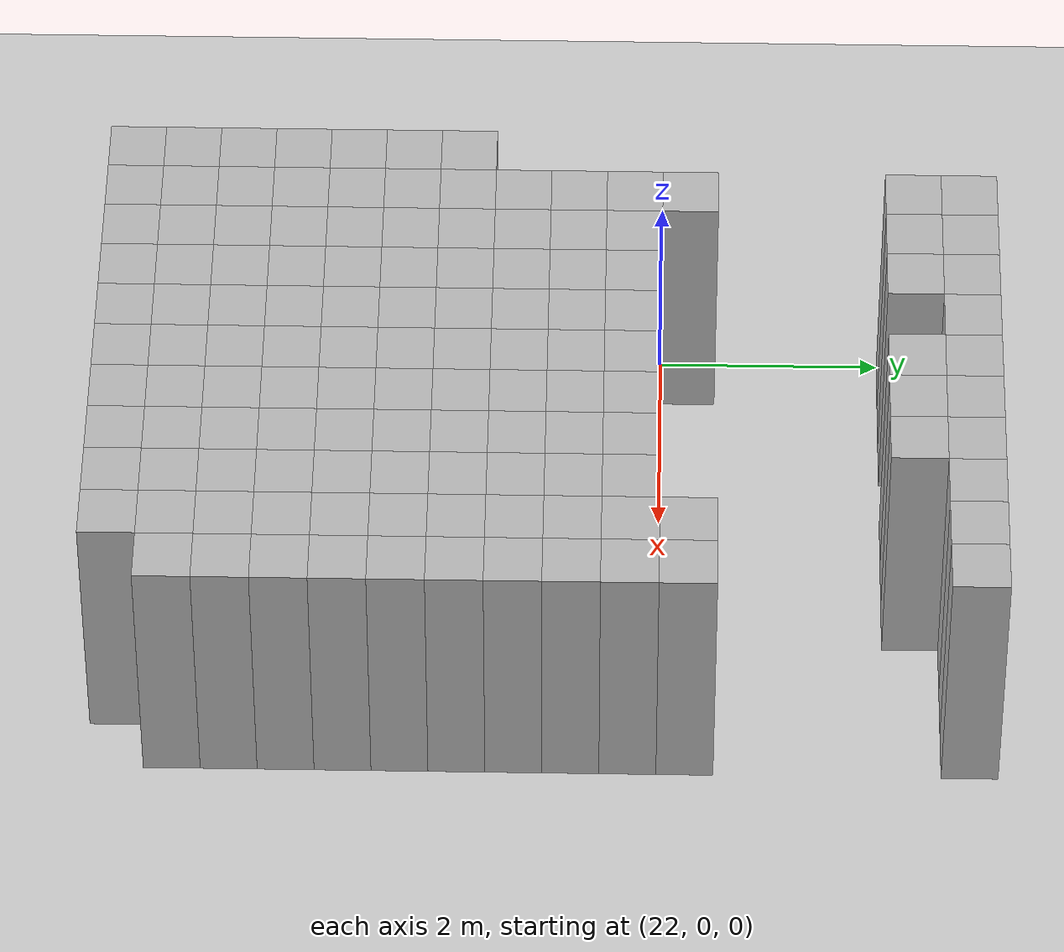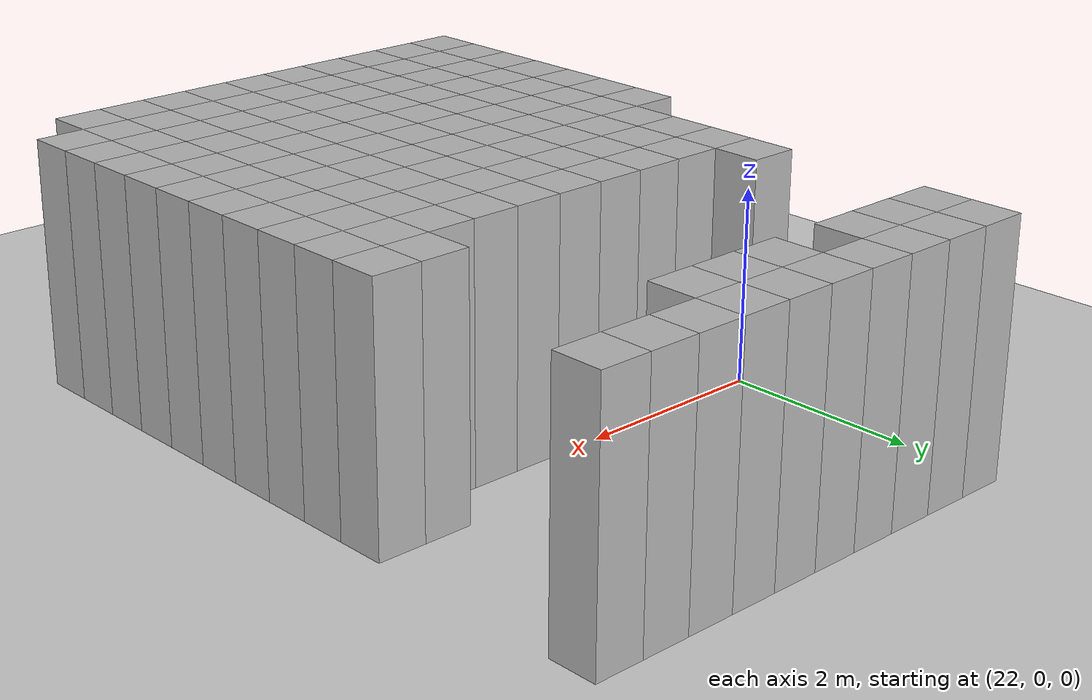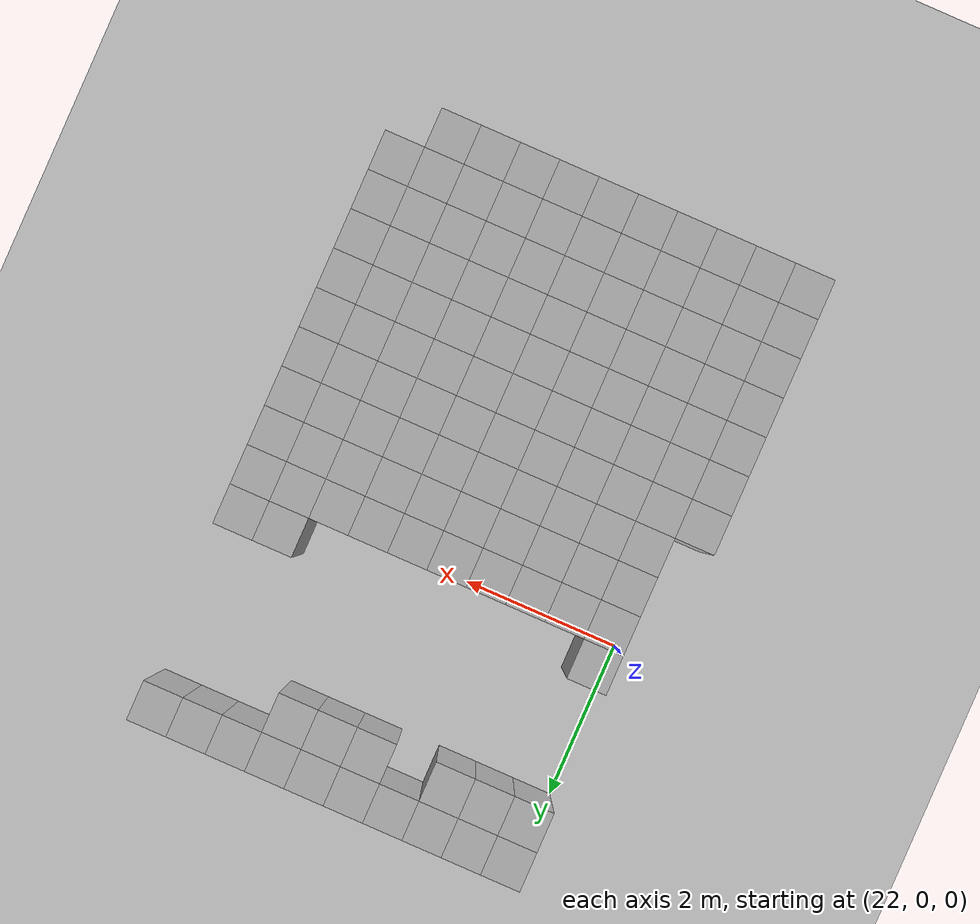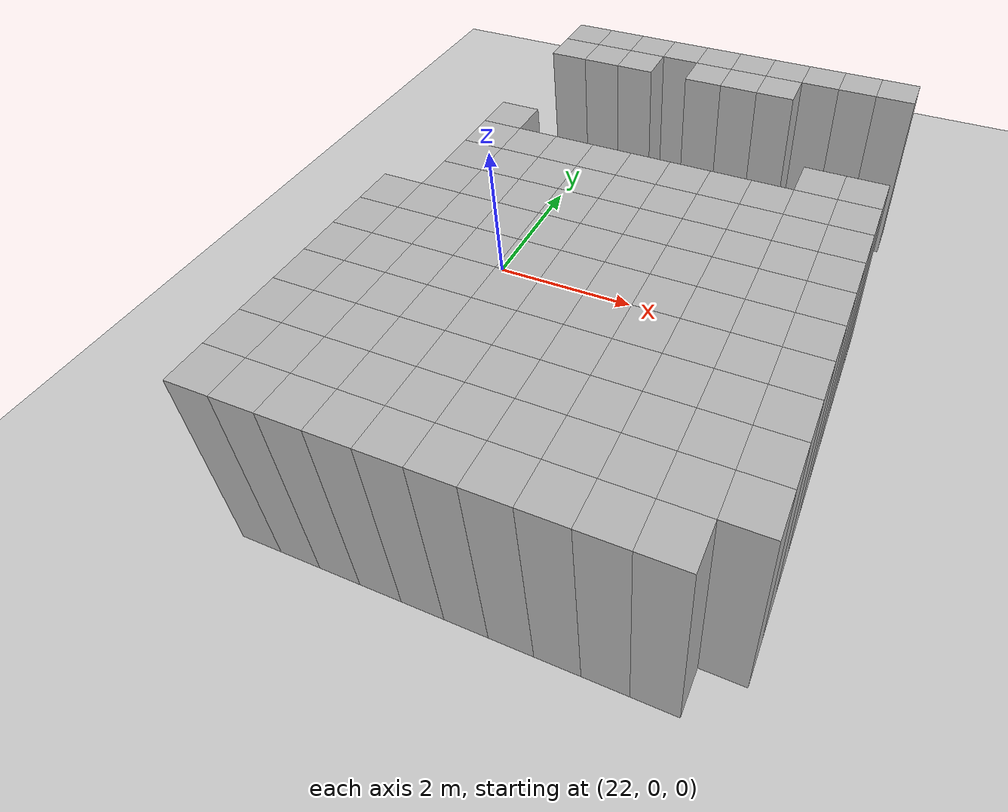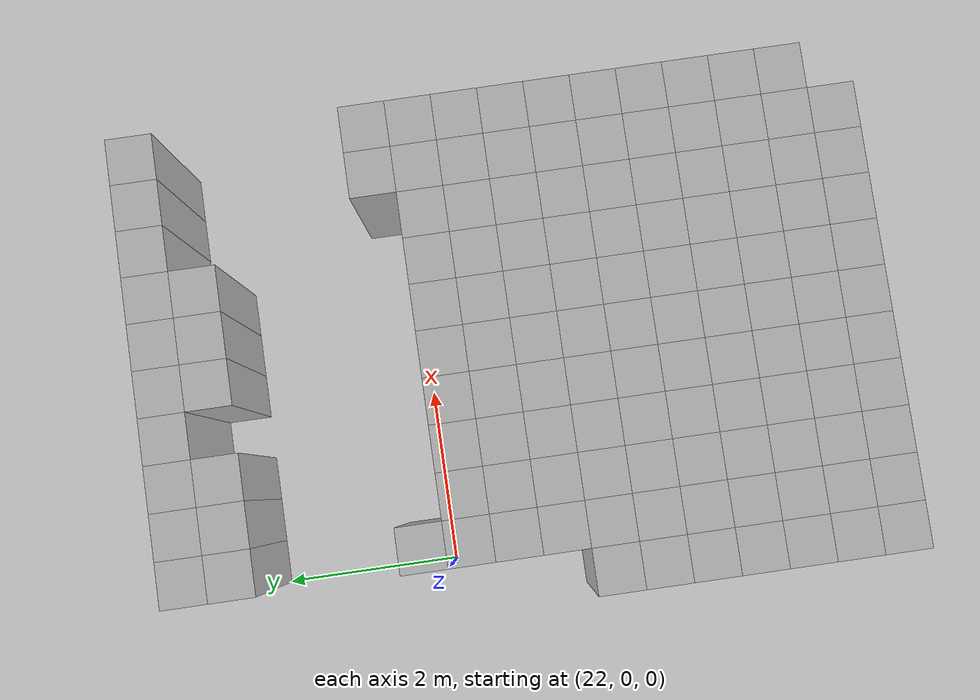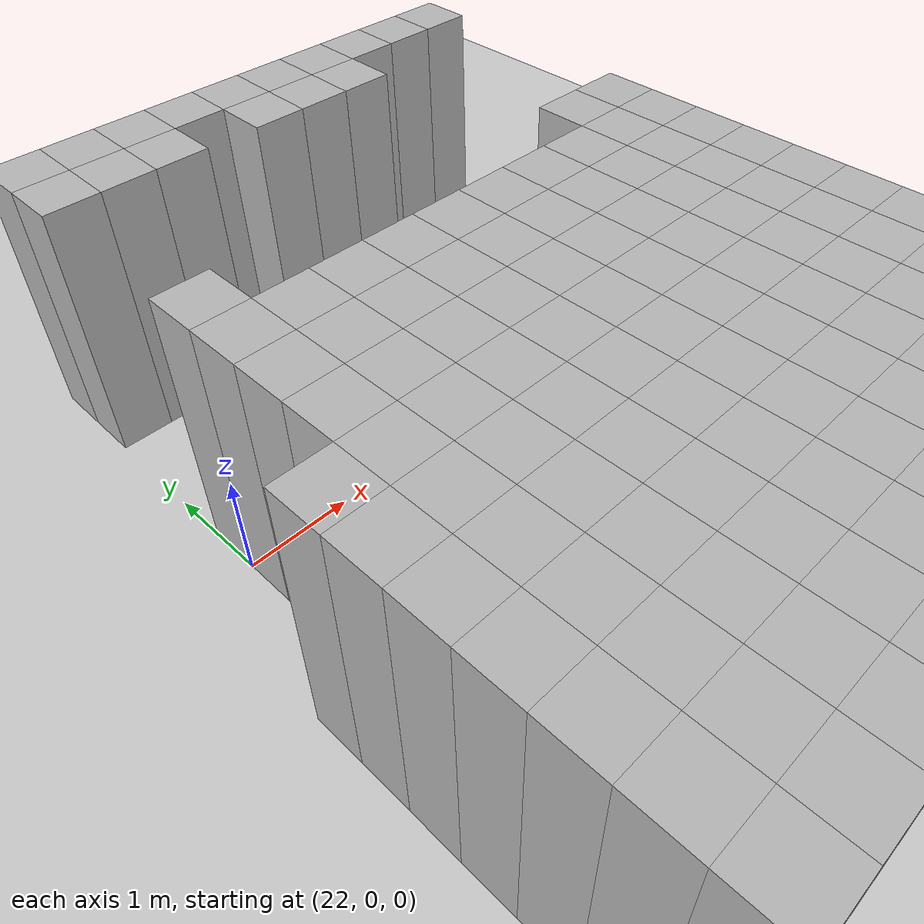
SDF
<sdf version="1.6">
 <world name="map_world">
  <include><uri>model://ground_plane</uri></include>
  <include><uri>model://sun</uri></include>
  <model name="wall_54">
   <static>true</static>
   <pose>22.250 2.750 1.250 0 0 0</pose>
   <link name="link">
    <collision name="collision"><geometry><box><size>0.500 0.500 2.500</size></box></geometry></collision>
    <visual name="visual"><geometry><box><size>0.500 0.500 2.500</size></box></geometry></visual>
   </link>
  </model>
  <model name="wall_55">
   <static>true</static>
   <pose>22.750 2.750 1.250 0 0 0</pose>
   <link name="link">
    <collision name="collision"><geometry><box><size>0.500 0.500 2.500</size></box></geometry></collision>
    <visual name="visual"><geometry><box><size>0.500 0.500 2.500</size></box></geometry></visual>
   </link>
  </model>
  <model name="wall_56">
   <static>true</static>
   <pose>23.250 2.750 1.250 0 0 0</pose>
   <link name="link">
    <collision name="collision"><geometry><box><size>0.500 0.500 2.500</size></box></geometry></collision>
    <visual name="visual"><geometry><box><size>0.500 0.500 2.500</size></box></geometry></visual>
   </link>
  </model>
  <model name="wall_57">
   <static>true</static>
   <pose>23.750 2.750 1.250 0 0 0</pose>
   <link name="link">
    <collision name="collision"><geometry><box><size>0.500 0.500 2.500</size></box></geometry></collision>
    <visual name="visual"><geometry><box><size>0.500 0.500 2.500</size></box></geometry></visual>
   </link>
  </model>
  <model name="wall_58">
   <static>true</static>
   <pose>24.250 2.750 1.250 0 0 0</pose>
   <link name="link">
    <collision name="collision"><geometry><box><size>0.500 0.500 2.500</size></box></geometry></collision>
    <visual name="visual"><geometry><box><size>0.500 0.500 2.500</size></box></geometry></visual>
   </link>
  </model>
  <model name="wall_59">
   <static>true</static>
   <pose>24.750 2.750 1.250 0 0 0</pose>
   <link name="link">
    <collision name="collision"><geometry><box><size>0.500 0.500 2.500</size></box></geometry></collision>
    <visual name="visual"><geometry><box><size>0.500 0.500 2.500</size></box></geometry></visual>
   </link>
  </model>
  <model name="wall_60">
   <static>true</static>
   <pose>25.250 2.750 1.250 0 0 0</pose>
   <link name="link">
    <collision name="collision"><geometry><box><size>0.500 0.500 2.500</size></box></geometry></collision>
    <visual name="visual"><geometry><box><size>0.500 0.500 2.500</size></box></geometry></visual>
   </link>
  </model>
  <model name="wall_61">
   <static>true</static>
   <pose>25.750 2.750 1.250 0 0 0</pose>
   <link name="link">
    <collision name="collision"><geometry><box><size>0.500 0.500 2.500</size></box></geometry></collision>
    <visual name="visual"><geometry><box><size>0.500 0.500 2.500</size></box></geometry></visual>
   </link>
  </model>
  <model name="wall_62">
   <static>true</static>
   <pose>26.250 2.750 1.250 0 0 0</pose>
   <link name="link">
    <collision name="collision"><geometry><box><size>0.500 0.500 2.500</size></box></geometry></collision>
    <visual name="visual"><geometry><box><size>0.500 0.500 2.500</size></box></geometry></visual>
   </link>
  </model>
  <model name="wall_63">
   <static>true</static>
   <pose>26.750 2.750 1.250 0 0 0</pose>
   <link name="link">
    <collision name="collision"><geometry><box><size>0.500 0.500 2.500</size></box></geometry></collision>
    <visual name="visual"><geometry><box><size>0.500 0.500 2.500</size></box></geometry></visual>
   </link>
  </model>
  <model name="wall_109">
   <static>true</static>
   <pose>22.250 2.250 1.250 0 0 0</pose>
   <link name="link">
    <collision name="collision"><geometry><box><size>0.500 0.500 2.500</size></box></geometry></collision>
    <visual name="visual"><geometry><box><size>0.500 0.500 2.500</size></box></geometry></visual>
   </link>
  </model>
  <model name="wall_110">
   <static>true</static>
   <pose>22.750 2.250 1.250 0 0 0</pose>
   <link name="link">
    <collision name="collision"><geometry><box><size>0.500 0.500 2.500</size></box></geometry></collision>
    <visual name="visual"><geometry><box><size>0.500 0.500 2.500</size></box></geometry></visual>
   </link>
  </model>
  <model name="wall_111">
   <static>true</static>
   <pose>23.250 2.250 1.250 0 0 0</pose>
   <link name="link">
    <collision name="collision"><geometry><box><size>0.500 0.500 2.500</size></box></geometry></collision>
    <visual name="visual"><geometry><box><size>0.500 0.500 2.500</size></box></geometry></visual>
   </link>
  </model>
  <model name="wall_112">
   <static>true</static>
   <pose>24.250 2.250 1.250 0 0 0</pose>
   <link name="link">
    <collision name="collision"><geometry><box><size>0.500 0.500 2.500</size></box></geometry></collision>
    <visual name="visual"><geometry><box><size>0.500 0.500 2.500</size></box></geometry></visual>
   </link>
  </model>
  <model name="wall_113">
   <static>true</static>
   <pose>24.750 2.250 1.250 0 0 0</pose>
   <link name="link">
    <collision name="collision"><geometry><box><size>0.500 0.500 2.500</size></box></geometry></collision>
    <visual name="visual"><geometry><box><size>0.500 0.500 2.500</size></box></geometry></visual>
   </link>
  </model>
  <model name="wall_114">
   <static>true</static>
   <pose>25.250 2.250 1.250 0 0 0</pose>
   <link name="link">
    <collision name="collision"><geometry><box><size>0.500 0.500 2.500</size></box></geometry></collision>
    <visual name="visual"><geometry><box><size>0.500 0.500 2.500</size></box></geometry></visual>
   </link>
  </model>
  <model name="wall_139">
   <static>true</static>
   <pose>22.250 0.250 1.250 0 0 0</pose>
   <link name="link">
    <collision name="collision"><geometry><box><size>0.500 0.500 2.500</size></box></geometry></collision>
    <visual name="visual"><geometry><box><size>0.500 0.500 2.500</size></box></geometry></visual>
   </link>
  </model>
  <model name="wall_140">
   <static>true</static>
   <pose>26.250 0.250 1.250 0 0 0</pose>
   <link name="link">
    <collision name="collision"><geometry><box><size>0.500 0.500 2.500</size></box></geometry></collision>
    <visual name="visual"><geometry><box><size>0.500 0.500 2.500</size></box></geometry></visual>
   </link>
  </model>
  <model name="wall_141">
   <static>true</static>
   <pose>26.750 0.250 1.250 0 0 0</pose>
   <link name="link">
    <collision name="collision"><geometry><box><size>0.500 0.500 2.500</size></box></geometry></collision>
    <visual name="visual"><geometry><box><size>0.500 0.500 2.500</size></box></geometry></visual>
   </link>
  </model>
  <model name="wall_184">
   <static>true</static>
   <pose>22.250 -0.250 1.250 0 0 0</pose>
   <link name="link">
    <collision name="collision"><geometry><box><size>0.500 0.500 2.500</size></box></geometry></collision>
    <visual name="visual"><geometry><box><size>0.500 0.500 2.500</size></box></geometry></visual>
   </link>
  </model>
  <model name="wall_185">
   <static>true</static>
   <pose>22.750 -0.250 1.250 0 0 0</pose>
   <link name="link">
    <collision name="collision"><geometry><box><size>0.500 0.500 2.500</size></box></geometry></collision>
    <visual name="visual"><geometry><box><size>0.500 0.500 2.500</size></box></geometry></visual>
   </link>
  </model>
  <model name="wall_186">
   <static>true</static>
   <pose>23.250 -0.250 1.250 0 0 0</pose>
   <link name="link">
    <collision name="collision"><geometry><box><size>0.500 0.500 2.500</size></box></geometry></collision>
    <visual name="visual"><geometry><box><size>0.500 0.500 2.500</size></box></geometry></visual>
   </link>
  </model>
  <model name="wall_187">
   <static>true</static>
   <pose>23.750 -0.250 1.250 0 0 0</pose>
   <link name="link">
    <collision name="collision"><geometry><box><size>0.500 0.500 2.500</size></box></geometry></collision>
    <visual name="visual"><geometry><box><size>0.500 0.500 2.500</size></box></geometry></visual>
   </link>
  </model>
  <model name="wall_188">
   <static>true</static>
   <pose>24.250 -0.250 1.250 0 0 0</pose>
   <link name="link">
    <collision name="collision"><geometry><box><size>0.500 0.500 2.500</size></box></geometry></collision>
    <visual name="visual"><geometry><box><size>0.500 0.500 2.500</size></box></geometry></visual>
   </link>
  </model>
  <model name="wall_189">
   <static>true</static>
   <pose>24.750 -0.250 1.250 0 0 0</pose>
   <link name="link">
    <collision name="collision"><geometry><box><size>0.500 0.500 2.500</size></box></geometry></collision>
    <visual name="visual"><geometry><box><size>0.500 0.500 2.500</size></box></geometry></visual>
   </link>
  </model>
  <model name="wall_190">
   <static>true</static>
   <pose>25.250 -0.250 1.250 0 0 0</pose>
   <link name="link">
    <collision name="collision"><geometry><box><size>0.500 0.500 2.500</size></box></geometry></collision>
    <visual name="visual"><geometry><box><size>0.500 0.500 2.500</size></box></geometry></visual>
   </link>
  </model>
  <model name="wall_191">
   <static>true</static>
   <pose>25.750 -0.250 1.250 0 0 0</pose>
   <link name="link">
    <collision name="collision"><geometry><box><size>0.500 0.500 2.500</size></box></geometry></collision>
    <visual name="visual"><geometry><box><size>0.500 0.500 2.500</size></box></geometry></visual>
   </link>
  </model>
  <model name="wall_192">
   <static>true</static>
   <pose>26.250 -0.250 1.250 0 0 0</pose>
   <link name="link">
    <collision name="collision"><geometry><box><size>0.500 0.500 2.500</size></box></geometry></collision>
    <visual name="visual"><geometry><box><size>0.500 0.500 2.500</size></box></geometry></visual>
   </link>
  </model>
  <model name="wall_193">
   <static>true</static>
   <pose>26.750 -0.250 1.250 0 0 0</pose>
   <link name="link">
    <collision name="collision"><geometry><box><size>0.500 0.500 2.500</size></box></geometry></collision>
    <visual name="visual"><geometry><box><size>0.500 0.500 2.500</size></box></geometry></visual>
   </link>
  </model>
  <model name="wall_256">
   <static>true</static>
   <pose>22.250 -0.750 1.250 0 0 0</pose>
   <link name="link">
    <collision name="collision"><geometry><box><size>0.500 0.500 2.500</size></box></geometry></collision>
    <visual name="visual"><geometry><box><size>0.500 0.500 2.500</size></box></geometry></visual>
   </link>
  </model>
  <model name="wall_257">
   <static>true</static>
   <pose>22.750 -0.750 1.250 0 0 0</pose>
   <link name="link">
    <collision name="collision"><geometry><box><size>0.500 0.500 2.500</size></box></geometry></collision>
    <visual name="visual"><geometry><box><size>0.500 0.500 2.500</size></box></geometry></visual>
   </link>
  </model>
  <model name="wall_258">
   <static>true</static>
   <pose>23.250 -0.750 1.250 0 0 0</pose>
   <link name="link">
    <collision name="collision"><geometry><box><size>0.500 0.500 2.500</size></box></geometry></collision>
    <visual name="visual"><geometry><box><size>0.500 0.500 2.500</size></box></geometry></visual>
   </link>
  </model>
  <model name="wall_259">
   <static>true</static>
   <pose>23.750 -0.750 1.250 0 0 0</pose>
   <link name="link">
    <collision name="collision"><geometry><box><size>0.500 0.500 2.500</size></box></geometry></collision>
    <visual name="visual"><geometry><box><size>0.500 0.500 2.500</size></box></geometry></visual>
   </link>
  </model>
  <model name="wall_260">
   <static>true</static>
   <pose>24.250 -0.750 1.250 0 0 0</pose>
   <link name="link">
    <collision name="collision"><geometry><box><size>0.500 0.500 2.500</size></box></geometry></collision>
    <visual name="visual"><geometry><box><size>0.500 0.500 2.500</size></box></geometry></visual>
   </link>
  </model>
  <model name="wall_261">
   <static>true</static>
   <pose>24.750 -0.750 1.250 0 0 0</pose>
   <link name="link">
    <collision name="collision"><geometry><box><size>0.500 0.500 2.500</size></box></geometry></collision>
    <visual name="visual"><geometry><box><size>0.500 0.500 2.500</size></box></geometry></visual>
   </link>
  </model>
  <model name="wall_262">
   <static>true</static>
   <pose>25.250 -0.750 1.250 0 0 0</pose>
   <link name="link">
    <collision name="collision"><geometry><box><size>0.500 0.500 2.500</size></box></geometry></collision>
    <visual name="visual"><geometry><box><size>0.500 0.500 2.500</size></box></geometry></visual>
   </link>
  </model>
  <model name="wall_263">
   <static>true</static>
   <pose>25.750 -0.750 1.250 0 0 0</pose>
   <link name="link">
    <collision name="collision"><geometry><box><size>0.500 0.500 2.500</size></box></geometry></collision>
    <visual name="visual"><geometry><box><size>0.500 0.500 2.500</size></box></geometry></visual>
   </link>
  </model>
  <model name="wall_264">
   <static>true</static>
   <pose>26.250 -0.750 1.250 0 0 0</pose>
   <link name="link">
    <collision name="collision"><geometry><box><size>0.500 0.500 2.500</size></box></geometry></collision>
    <visual name="visual"><geometry><box><size>0.500 0.500 2.500</size></box></geometry></visual>
   </link>
  </model>
  <model name="wall_265">
   <static>true</static>
   <pose>26.750 -0.750 1.250 0 0 0</pose>
   <link name="link">
    <collision name="collision"><geometry><box><size>0.500 0.500 2.500</size></box></geometry></collision>
    <visual name="visual"><geometry><box><size>0.500 0.500 2.500</size></box></geometry></visual>
   </link>
  </model>
  <model name="wall_328">
   <static>true</static>
   <pose>22.250 -1.250 1.250 0 0 0</pose>
   <link name="link">
    <collision name="collision"><geometry><box><size>0.500 0.500 2.500</size></box></geometry></collision>
    <visual name="visual"><geometry><box><size>0.500 0.500 2.500</size></box></geometry></visual>
   </link>
  </model>
  <model name="wall_329">
   <static>true</static>
   <pose>22.750 -1.250 1.250 0 0 0</pose>
   <link name="link">
    <collision name="collision"><geometry><box><size>0.500 0.500 2.500</size></box></geometry></collision>
    <visual name="visual"><geometry><box><size>0.500 0.500 2.500</size></box></geometry></visual>
   </link>
  </model>
  <model name="wall_330">
   <static>true</static>
   <pose>23.250 -1.250 1.250 0 0 0</pose>
   <link name="link">
    <collision name="collision"><geometry><box><size>0.500 0.500 2.500</size></box></geometry></collision>
    <visual name="visual"><geometry><box><size>0.500 0.500 2.500</size></box></geometry></visual>
   </link>
  </model>
  <model name="wall_331">
   <static>true</static>
   <pose>23.750 -1.250 1.250 0 0 0</pose>
   <link name="link">
    <collision name="collision"><geometry><box><size>0.500 0.500 2.500</size></box></geometry></collision>
    <visual name="visual"><geometry><box><size>0.500 0.500 2.500</size></box></geometry></visual>
   </link>
  </model>
  <model name="wall_332">
   <static>true</static>
   <pose>24.250 -1.250 1.250 0 0 0</pose>
   <link name="link">
    <collision name="collision"><geometry><box><size>0.500 0.500 2.500</size></box></geometry></collision>
    <visual name="visual"><geometry><box><size>0.500 0.500 2.500</size></box></geometry></visual>
   </link>
  </model>
  <model name="wall_333">
   <static>true</static>
   <pose>24.750 -1.250 1.250 0 0 0</pose>
   <link name="link">
    <collision name="collision"><geometry><box><size>0.500 0.500 2.500</size></box></geometry></collision>
    <visual name="visual"><geometry><box><size>0.500 0.500 2.500</size></box></geometry></visual>
   </link>
  </model>
  <model name="wall_334">
   <static>true</static>
   <pose>25.250 -1.250 1.250 0 0 0</pose>
   <link name="link">
    <collision name="collision"><geometry><box><size>0.500 0.500 2.500</size></box></geometry></collision>
    <visual name="visual"><geometry><box><size>0.500 0.500 2.500</size></box></geometry></visual>
   </link>
  </model>
  <model name="wall_335">
   <static>true</static>
   <pose>25.750 -1.250 1.250 0 0 0</pose>
   <link name="link">
    <collision name="collision"><geometry><box><size>0.500 0.500 2.500</size></box></geometry></collision>
    <visual name="visual"><geometry><box><size>0.500 0.500 2.500</size></box></geometry></visual>
   </link>
  </model>
  <model name="wall_336">
   <static>true</static>
   <pose>26.250 -1.250 1.250 0 0 0</pose>
   <link name="link">
    <collision name="collision"><geometry><box><size>0.500 0.500 2.500</size></box></geometry></collision>
    <visual name="visual"><geometry><box><size>0.500 0.500 2.500</size></box></geometry></visual>
   </link>
  </model>
  <model name="wall_337">
   <static>true</static>
   <pose>26.750 -1.250 1.250 0 0 0</pose>
   <link name="link">
    <collision name="collision"><geometry><box><size>0.500 0.500 2.500</size></box></geometry></collision>
    <visual name="visual"><geometry><box><size>0.500 0.500 2.500</size></box></geometry></visual>
   </link>
  </model>
  <model name="wall_399">
   <static>true</static>
   <pose>21.750 -1.750 1.250 0 0 0</pose>
   <link name="link">
    <collision name="collision"><geometry><box><size>0.500 0.500 2.500</size></box></geometry></collision>
    <visual name="visual"><geometry><box><size>0.500 0.500 2.500</size></box></geometry></visual>
   </link>
  </model>
  <model name="wall_400">
   <static>true</static>
   <pose>22.250 -1.750 1.250 0 0 0</pose>
   <link name="link">
    <collision name="collision"><geometry><box><size>0.500 0.500 2.500</size></box></geometry></collision>
    <visual name="visual"><geometry><box><size>0.500 0.500 2.500</size></box></geometry></visual>
   </link>
  </model>
  <model name="wall_401">
   <static>true</static>
   <pose>22.750 -1.750 1.250 0 0 0</pose>
   <link name="link">
    <collision name="collision"><geometry><box><size>0.500 0.500 2.500</size></box></geometry></collision>
    <visual name="visual"><geometry><box><size>0.500 0.500 2.500</size></box></geometry></visual>
   </link>
  </model>
  <model name="wall_402">
   <static>true</static>
   <pose>23.250 -1.750 1.250 0 0 0</pose>
   <link name="link">
    <collision name="collision"><geometry><box><size>0.500 0.500 2.500</size></box></geometry></collision>
    <visual name="visual"><geometry><box><size>0.500 0.500 2.500</size></box></geometry></visual>
   </link>
  </model>
  <model name="wall_403">
   <static>true</static>
   <pose>23.750 -1.750 1.250 0 0 0</pose>
   <link name="link">
    <collision name="collision"><geometry><box><size>0.500 0.500 2.500</size></box></geometry></collision>
    <visual name="visual"><geometry><box><size>0.500 0.500 2.500</size></box></geometry></visual>
   </link>
  </model>
  <model name="wall_404">
   <static>true</static>
   <pose>24.250 -1.750 1.250 0 0 0</pose>
   <link name="link">
    <collision name="collision"><geometry><box><size>0.500 0.500 2.500</size></box></geometry></collision>
    <visual name="visual"><geometry><box><size>0.500 0.500 2.500</size></box></geometry></visual>
   </link>
  </model>
  <model name="wall_405">
   <static>true</static>
   <pose>24.750 -1.750 1.250 0 0 0</pose>
   <link name="link">
    <collision name="collision"><geometry><box><size>0.500 0.500 2.500</size></box></geometry></collision>
    <visual name="visual"><geometry><box><size>0.500 0.500 2.500</size></box></geometry></visual>
   </link>
  </model>
  <model name="wall_406">
   <static>true</static>
   <pose>25.250 -1.750 1.250 0 0 0</pose>
   <link name="link">
    <collision name="collision"><geometry><box><size>0.500 0.500 2.500</size></box></geometry></collision>
    <visual name="visual"><geometry><box><size>0.500 0.500 2.500</size></box></geometry></visual>
   </link>
  </model>
  <model name="wall_407">
   <static>true</static>
   <pose>25.750 -1.750 1.250 0 0 0</pose>
   <link name="link">
    <collision name="collision"><geometry><box><size>0.500 0.500 2.500</size></box></geometry></collision>
    <visual name="visual"><geometry><box><size>0.500 0.500 2.500</size></box></geometry></visual>
   </link>
  </model>
  <model name="wall_408">
   <static>true</static>
   <pose>26.250 -1.750 1.250 0 0 0</pose>
   <link name="link">
    <collision name="collision"><geometry><box><size>0.500 0.500 2.500</size></box></geometry></collision>
    <visual name="visual"><geometry><box><size>0.500 0.500 2.500</size></box></geometry></visual>
   </link>
  </model>
  <model name="wall_409">
   <static>true</static>
   <pose>26.750 -1.750 1.250 0 0 0</pose>
   <link name="link">
    <collision name="collision"><geometry><box><size>0.500 0.500 2.500</size></box></geometry></collision>
    <visual name="visual"><geometry><box><size>0.500 0.500 2.500</size></box></geometry></visual>
   </link>
  </model>
  <model name="wall_471">
   <static>true</static>
   <pose>21.750 -2.250 1.250 0 0 0</pose>
   <link name="link">
    <collision name="collision"><geometry><box><size>0.500 0.500 2.500</size></box></geometry></collision>
    <visual name="visual"><geometry><box><size>0.500 0.500 2.500</size></box></geometry></visual>
   </link>
  </model>
  <model name="wall_472">
   <static>true</static>
   <pose>22.250 -2.250 1.250 0 0 0</pose>
   <link name="link">
    <collision name="collision"><geometry><box><size>0.500 0.500 2.500</size></box></geometry></collision>
    <visual name="visual"><geometry><box><size>0.500 0.500 2.500</size></box></geometry></visual>
   </link>
  </model>
  <model name="wall_473">
   <static>true</static>
   <pose>22.750 -2.250 1.250 0 0 0</pose>
   <link name="link">
    <collision name="collision"><geometry><box><size>0.500 0.500 2.500</size></box></geometry></collision>
    <visual name="visual"><geometry><box><size>0.500 0.500 2.500</size></box></geometry></visual>
   </link>
  </model>
  <model name="wall_474">
   <static>true</static>
   <pose>23.250 -2.250 1.250 0 0 0</pose>
   <link name="link">
    <collision name="collision"><geometry><box><size>0.500 0.500 2.500</size></box></geometry></collision>
    <visual name="visual"><geometry><box><size>0.500 0.500 2.500</size></box></geometry></visual>
   </link>
  </model>
  <model name="wall_475">
   <static>true</static>
   <pose>23.750 -2.250 1.250 0 0 0</pose>
   <link name="link">
    <collision name="collision"><geometry><box><size>0.500 0.500 2.500</size></box></geometry></collision>
    <visual name="visual"><geometry><box><size>0.500 0.500 2.500</size></box></geometry></visual>
   </link>
  </model>
  <model name="wall_476">
   <static>true</static>
   <pose>24.250 -2.250 1.250 0 0 0</pose>
   <link name="link">
    <collision name="collision"><geometry><box><size>0.500 0.500 2.500</size></box></geometry></collision>
    <visual name="visual"><geometry><box><size>0.500 0.500 2.500</size></box></geometry></visual>
   </link>
  </model>
  <model name="wall_477">
   <static>true</static>
   <pose>24.750 -2.250 1.250 0 0 0</pose>
   <link name="link">
    <collision name="collision"><geometry><box><size>0.500 0.500 2.500</size></box></geometry></collision>
    <visual name="visual"><geometry><box><size>0.500 0.500 2.500</size></box></geometry></visual>
   </link>
  </model>
  <model name="wall_478">
   <static>true</static>
   <pose>25.250 -2.250 1.250 0 0 0</pose>
   <link name="link">
    <collision name="collision"><geometry><box><size>0.500 0.500 2.500</size></box></geometry></collision>
    <visual name="visual"><geometry><box><size>0.500 0.500 2.500</size></box></geometry></visual>
   </link>
  </model>
  <model name="wall_479">
   <static>true</static>
   <pose>25.750 -2.250 1.250 0 0 0</pose>
   <link name="link">
    <collision name="collision"><geometry><box><size>0.500 0.500 2.500</size></box></geometry></collision>
    <visual name="visual"><geometry><box><size>0.500 0.500 2.500</size></box></geometry></visual>
   </link>
  </model>
  <model name="wall_480">
   <static>true</static>
   <pose>26.250 -2.250 1.250 0 0 0</pose>
   <link name="link">
    <collision name="collision"><geometry><box><size>0.500 0.500 2.500</size></box></geometry></collision>
    <visual name="visual"><geometry><box><size>0.500 0.500 2.500</size></box></geometry></visual>
   </link>
  </model>
  <model name="wall_481">
   <static>true</static>
   <pose>26.750 -2.250 1.250 0 0 0</pose>
   <link name="link">
    <collision name="collision"><geometry><box><size>0.500 0.500 2.500</size></box></geometry></collision>
    <visual name="visual"><geometry><box><size>0.500 0.500 2.500</size></box></geometry></visual>
   </link>
  </model>
  <model name="wall_543">
   <static>true</static>
   <pose>21.750 -2.750 1.250 0 0 0</pose>
   <link name="link">
    <collision name="collision"><geometry><box><size>0.500 0.500 2.500</size></box></geometry></collision>
    <visual name="visual"><geometry><box><size>0.500 0.500 2.500</size></box></geometry></visual>
   </link>
  </model>
  <model name="wall_544">
   <static>true</static>
   <pose>22.250 -2.750 1.250 0 0 0</pose>
   <link name="link">
    <collision name="collision"><geometry><box><size>0.500 0.500 2.500</size></box></geometry></collision>
    <visual name="visual"><geometry><box><size>0.500 0.500 2.500</size></box></geometry></visual>
   </link>
  </model>
  <model name="wall_545">
   <static>true</static>
   <pose>22.750 -2.750 1.250 0 0 0</pose>
   <link name="link">
    <collision name="collision"><geometry><box><size>0.500 0.500 2.500</size></box></geometry></collision>
    <visual name="visual"><geometry><box><size>0.500 0.500 2.500</size></box></geometry></visual>
   </link>
  </model>
  <model name="wall_546">
   <static>true</static>
   <pose>23.250 -2.750 1.250 0 0 0</pose>
   <link name="link">
    <collision name="collision"><geometry><box><size>0.500 0.500 2.500</size></box></geometry></collision>
    <visual name="visual"><geometry><box><size>0.500 0.500 2.500</size></box></geometry></visual>
   </link>
  </model>
  <model name="wall_547">
   <static>true</static>
   <pose>23.750 -2.750 1.250 0 0 0</pose>
   <link name="link">
    <collision name="collision"><geometry><box><size>0.500 0.500 2.500</size></box></geometry></collision>
    <visual name="visual"><geometry><box><size>0.500 0.500 2.500</size></box></geometry></visual>
   </link>
  </model>
  <model name="wall_548">
   <static>true</static>
   <pose>24.250 -2.750 1.250 0 0 0</pose>
   <link name="link">
    <collision name="collision"><geometry><box><size>0.500 0.500 2.500</size></box></geometry></collision>
    <visual name="visual"><geometry><box><size>0.500 0.500 2.500</size></box></geometry></visual>
   </link>
  </model>
  <model name="wall_549">
   <static>true</static>
   <pose>24.750 -2.750 1.250 0 0 0</pose>
   <link name="link">
    <collision name="collision"><geometry><box><size>0.500 0.500 2.500</size></box></geometry></collision>
    <visual name="visual"><geometry><box><size>0.500 0.500 2.500</size></box></geometry></visual>
   </link>
  </model>
  <model name="wall_550">
   <static>true</static>
   <pose>25.250 -2.750 1.250 0 0 0</pose>
   <link name="link">
    <collision name="collision"><geometry><box><size>0.500 0.500 2.500</size></box></geometry></collision>
    <visual name="visual"><geometry><box><size>0.500 0.500 2.500</size></box></geometry></visual>
   </link>
  </model>
  <model name="wall_551">
   <static>true</static>
   <pose>25.750 -2.750 1.250 0 0 0</pose>
   <link name="link">
    <collision name="collision"><geometry><box><size>0.500 0.500 2.500</size></box></geometry></collision>
    <visual name="visual"><geometry><box><size>0.500 0.500 2.500</size></box></geometry></visual>
   </link>
  </model>
  <model name="wall_552">
   <static>true</static>
   <pose>26.250 -2.750 1.250 0 0 0</pose>
   <link name="link">
    <collision name="collision"><geometry><box><size>0.500 0.500 2.500</size></box></geometry></collision>
    <visual name="visual"><geometry><box><size>0.500 0.500 2.500</size></box></geometry></visual>
   </link>
  </model>
  <model name="wall_553">
   <static>true</static>
   <pose>26.750 -2.750 1.250 0 0 0</pose>
   <link name="link">
    <collision name="collision"><geometry><box><size>0.500 0.500 2.500</size></box></geometry></collision>
    <visual name="visual"><geometry><box><size>0.500 0.500 2.500</size></box></geometry></visual>
   </link>
  </model>
  <model name="wall_615">
   <static>true</static>
   <pose>21.750 -3.250 1.250 0 0 0</pose>
   <link name="link">
    <collision name="collision"><geometry><box><size>0.500 0.500 2.500</size></box></geometry></collision>
    <visual name="visual"><geometry><box><size>0.500 0.500 2.500</size></box></geometry></visual>
   </link>
  </model>
  <model name="wall_616">
   <static>true</static>
   <pose>22.250 -3.250 1.250 0 0 0</pose>
   <link name="link">
    <collision name="collision"><geometry><box><size>0.500 0.500 2.500</size></box></geometry></collision>
    <visual name="visual"><geometry><box><size>0.500 0.500 2.500</size></box></geometry></visual>
   </link>
  </model>
  <model name="wall_617">
   <static>true</static>
   <pose>22.750 -3.250 1.250 0 0 0</pose>
   <link name="link">
    <collision name="collision"><geometry><box><size>0.500 0.500 2.500</size></box></geometry></collision>
    <visual name="visual"><geometry><box><size>0.500 0.500 2.500</size></box></geometry></visual>
   </link>
  </model>
  <model name="wall_618">
   <static>true</static>
   <pose>23.250 -3.250 1.250 0 0 0</pose>
   <link name="link">
    <collision name="collision"><geometry><box><size>0.500 0.500 2.500</size></box></geometry></collision>
    <visual name="visual"><geometry><box><size>0.500 0.500 2.500</size></box></geometry></visual>
   </link>
  </model>
  <model name="wall_619">
   <static>true</static>
   <pose>23.750 -3.250 1.250 0 0 0</pose>
   <link name="link">
    <collision name="collision"><geometry><box><size>0.500 0.500 2.500</size></box></geometry></collision>
    <visual name="visual"><geometry><box><size>0.500 0.500 2.500</size></box></geometry></visual>
   </link>
  </model>
  <model name="wall_620">
   <static>true</static>
   <pose>24.250 -3.250 1.250 0 0 0</pose>
   <link name="link">
    <collision name="collision"><geometry><box><size>0.500 0.500 2.500</size></box></geometry></collision>
    <visual name="visual"><geometry><box><size>0.500 0.500 2.500</size></box></geometry></visual>
   </link>
  </model>
  <model name="wall_621">
   <static>true</static>
   <pose>24.750 -3.250 1.250 0 0 0</pose>
   <link name="link">
    <collision name="collision"><geometry><box><size>0.500 0.500 2.500</size></box></geometry></collision>
    <visual name="visual"><geometry><box><size>0.500 0.500 2.500</size></box></geometry></visual>
   </link>
  </model>
  <model name="wall_622">
   <static>true</static>
   <pose>25.250 -3.250 1.250 0 0 0</pose>
   <link name="link">
    <collision name="collision"><geometry><box><size>0.500 0.500 2.500</size></box></geometry></collision>
    <visual name="visual"><geometry><box><size>0.500 0.500 2.500</size></box></geometry></visual>
   </link>
  </model>
  <model name="wall_623">
   <static>true</static>
   <pose>25.750 -3.250 1.250 0 0 0</pose>
   <link name="link">
    <collision name="collision"><geometry><box><size>0.500 0.500 2.500</size></box></geometry></collision>
    <visual name="visual"><geometry><box><size>0.500 0.500 2.500</size></box></geometry></visual>
   </link>
  </model>
  <model name="wall_624">
   <static>true</static>
   <pose>26.250 -3.250 1.250 0 0 0</pose>
   <link name="link">
    <collision name="collision"><geometry><box><size>0.500 0.500 2.500</size></box></geometry></collision>
    <visual name="visual"><geometry><box><size>0.500 0.500 2.500</size></box></geometry></visual>
   </link>
  </model>
  <model name="wall_625">
   <static>true</static>
   <pose>26.750 -3.250 1.250 0 0 0</pose>
   <link name="link">
    <collision name="collision"><geometry><box><size>0.500 0.500 2.500</size></box></geometry></collision>
    <visual name="visual"><geometry><box><size>0.500 0.500 2.500</size></box></geometry></visual>
   </link>
  </model>
  <model name="wall_687">
   <static>true</static>
   <pose>21.750 -3.750 1.250 0 0 0</pose>
   <link name="link">
    <collision name="collision"><geometry><box><size>0.500 0.500 2.500</size></box></geometry></collision>
    <visual name="visual"><geometry><box><size>0.500 0.500 2.500</size></box></geometry></visual>
   </link>
  </model>
  <model name="wall_688">
   <static>true</static>
   <pose>22.250 -3.750 1.250 0 0 0</pose>
   <link name="link">
    <collision name="collision"><geometry><box><size>0.500 0.500 2.500</size></box></geometry></collision>
    <visual name="visual"><geometry><box><size>0.500 0.500 2.500</size></box></geometry></visual>
   </link>
  </model>
  <model name="wall_689">
   <static>true</static>
   <pose>22.750 -3.750 1.250 0 0 0</pose>
   <link name="link">
    <collision name="collision"><geometry><box><size>0.500 0.500 2.500</size></box></geometry></collision>
    <visual name="visual"><geometry><box><size>0.500 0.500 2.500</size></box></geometry></visual>
   </link>
  </model>
  <model name="wall_690">
   <static>true</static>
   <pose>23.250 -3.750 1.250 0 0 0</pose>
   <link name="link">
    <collision name="collision"><geometry><box><size>0.500 0.500 2.500</size></box></geometry></collision>
    <visual name="visual"><geometry><box><size>0.500 0.500 2.500</size></box></geometry></visual>
   </link>
  </model>
  <model name="wall_691">
   <static>true</static>
   <pose>23.750 -3.750 1.250 0 0 0</pose>
   <link name="link">
    <collision name="collision"><geometry><box><size>0.500 0.500 2.500</size></box></geometry></collision>
    <visual name="visual"><geometry><box><size>0.500 0.500 2.500</size></box></geometry></visual>
   </link>
  </model>
  <model name="wall_692">
   <static>true</static>
   <pose>24.250 -3.750 1.250 0 0 0</pose>
   <link name="link">
    <collision name="collision"><geometry><box><size>0.500 0.500 2.500</size></box></geometry></collision>
    <visual name="visual"><geometry><box><size>0.500 0.500 2.500</size></box></geometry></visual>
   </link>
  </model>
  <model name="wall_693">
   <static>true</static>
   <pose>24.750 -3.750 1.250 0 0 0</pose>
   <link name="link">
    <collision name="collision"><geometry><box><size>0.500 0.500 2.500</size></box></geometry></collision>
    <visual name="visual"><geometry><box><size>0.500 0.500 2.500</size></box></geometry></visual>
   </link>
  </model>
  <model name="wall_694">
   <static>true</static>
   <pose>25.250 -3.750 1.250 0 0 0</pose>
   <link name="link">
    <collision name="collision"><geometry><box><size>0.500 0.500 2.500</size></box></geometry></collision>
    <visual name="visual"><geometry><box><size>0.500 0.500 2.500</size></box></geometry></visual>
   </link>
  </model>
  <model name="wall_695">
   <static>true</static>
   <pose>25.750 -3.750 1.250 0 0 0</pose>
   <link name="link">
    <collision name="collision"><geometry><box><size>0.500 0.500 2.500</size></box></geometry></collision>
    <visual name="visual"><geometry><box><size>0.500 0.500 2.500</size></box></geometry></visual>
   </link>
  </model>
  <model name="wall_696">
   <static>true</static>
   <pose>26.250 -3.750 1.250 0 0 0</pose>
   <link name="link">
    <collision name="collision"><geometry><box><size>0.500 0.500 2.500</size></box></geometry></collision>
    <visual name="visual"><geometry><box><size>0.500 0.500 2.500</size></box></geometry></visual>
   </link>
  </model>
  <model name="wall_697">
   <static>true</static>
   <pose>26.750 -3.750 1.250 0 0 0</pose>
   <link name="link">
    <collision name="collision"><geometry><box><size>0.500 0.500 2.500</size></box></geometry></collision>
    <visual name="visual"><geometry><box><size>0.500 0.500 2.500</size></box></geometry></visual>
   </link>
  </model>
  <model name="wall_759">
   <static>true</static>
   <pose>21.750 -4.250 1.250 0 0 0</pose>
   <link name="link">
    <collision name="collision"><geometry><box><size>0.500 0.500 2.500</size></box></geometry></collision>
    <visual name="visual"><geometry><box><size>0.500 0.500 2.500</size></box></geometry></visual>
   </link>
  </model>
  <model name="wall_760">
   <static>true</static>
   <pose>22.250 -4.250 1.250 0 0 0</pose>
   <link name="link">
    <collision name="collision"><geometry><box><size>0.500 0.500 2.500</size></box></geometry></collision>
    <visual name="visual"><geometry><box><size>0.500 0.500 2.500</size></box></geometry></visual>
   </link>
  </model>
  <model name="wall_761">
   <static>true</static>
   <pose>22.750 -4.250 1.250 0 0 0</pose>
   <link name="link">
    <collision name="collision"><geometry><box><size>0.500 0.500 2.500</size></box></geometry></collision>
    <visual name="visual"><geometry><box><size>0.500 0.500 2.500</size></box></geometry></visual>
   </link>
  </model>
  <model name="wall_762">
   <static>true</static>
   <pose>23.250 -4.250 1.250 0 0 0</pose>
   <link name="link">
    <collision name="collision"><geometry><box><size>0.500 0.500 2.500</size></box></geometry></collision>
    <visual name="visual"><geometry><box><size>0.500 0.500 2.500</size></box></geometry></visual>
   </link>
  </model>
  <model name="wall_763">
   <static>true</static>
   <pose>23.750 -4.250 1.250 0 0 0</pose>
   <link name="link">
    <collision name="collision"><geometry><box><size>0.500 0.500 2.500</size></box></geometry></collision>
    <visual name="visual"><geometry><box><size>0.500 0.500 2.500</size></box></geometry></visual>
   </link>
  </model>
  <model name="wall_764">
   <static>true</static>
   <pose>24.250 -4.250 1.250 0 0 0</pose>
   <link name="link">
    <collision name="collision"><geometry><box><size>0.500 0.500 2.500</size></box></geometry></collision>
    <visual name="visual"><geometry><box><size>0.500 0.500 2.500</size></box></geometry></visual>
   </link>
  </model>
  <model name="wall_765">
   <static>true</static>
   <pose>24.750 -4.250 1.250 0 0 0</pose>
   <link name="link">
    <collision name="collision"><geometry><box><size>0.500 0.500 2.500</size></box></geometry></collision>
    <visual name="visual"><geometry><box><size>0.500 0.500 2.500</size></box></geometry></visual>
   </link>
  </model>
  <model name="wall_766">
   <static>true</static>
   <pose>25.250 -4.250 1.250 0 0 0</pose>
   <link name="link">
    <collision name="collision"><geometry><box><size>0.500 0.500 2.500</size></box></geometry></collision>
    <visual name="visual"><geometry><box><size>0.500 0.500 2.500</size></box></geometry></visual>
   </link>
  </model>
  <model name="wall_767">
   <static>true</static>
   <pose>25.750 -4.250 1.250 0 0 0</pose>
   <link name="link">
    <collision name="collision"><geometry><box><size>0.500 0.500 2.500</size></box></geometry></collision>
    <visual name="visual"><geometry><box><size>0.500 0.500 2.500</size></box></geometry></visual>
   </link>
  </model>
  <model name="wall_768">
   <static>true</static>
   <pose>26.250 -4.250 1.250 0 0 0</pose>
   <link name="link">
    <collision name="collision"><geometry><box><size>0.500 0.500 2.500</size></box></geometry></collision>
    <visual name="visual"><geometry><box><size>0.500 0.500 2.500</size></box></geometry></visual>
   </link>
  </model>
  <model name="wall_769">
   <static>true</static>
   <pose>26.750 -4.250 1.250 0 0 0</pose>
   <link name="link">
    <collision name="collision"><geometry><box><size>0.500 0.500 2.500</size></box></geometry></collision>
    <visual name="visual"><geometry><box><size>0.500 0.500 2.500</size></box></geometry></visual>
   </link>
  </model>
  <model name="wall_845">
   <static>true</static>
   <pose>21.750 -4.750 1.250 0 0 0</pose>
   <link name="link">
    <collision name="collision"><geometry><box><size>0.500 0.500 2.500</size></box></geometry></collision>
    <visual name="visual"><geometry><box><size>0.500 0.500 2.500</size></box></geometry></visual>
   </link>
  </model>
  <model name="wall_846">
   <static>true</static>
   <pose>22.250 -4.750 1.250 0 0 0</pose>
   <link name="link">
    <collision name="collision"><geometry><box><size>0.500 0.500 2.500</size></box></geometry></collision>
    <visual name="visual"><geometry><box><size>0.500 0.500 2.500</size></box></geometry></visual>
   </link>
  </model>
  <model name="wall_847">
   <static>true</static>
   <pose>22.750 -4.750 1.250 0 0 0</pose>
   <link name="link">
    <collision name="collision"><geometry><box><size>0.500 0.500 2.500</size></box></geometry></collision>
    <visual name="visual"><geometry><box><size>0.500 0.500 2.500</size></box></geometry></visual>
   </link>
  </model>
  <model name="wall_848">
   <static>true</static>
   <pose>23.250 -4.750 1.250 0 0 0</pose>
   <link name="link">
    <collision name="collision"><geometry><box><size>0.500 0.500 2.500</size></box></geometry></collision>
    <visual name="visual"><geometry><box><size>0.500 0.500 2.500</size></box></geometry></visual>
   </link>
  </model>
  <model name="wall_849">
   <static>true</static>
   <pose>23.750 -4.750 1.250 0 0 0</pose>
   <link name="link">
    <collision name="collision"><geometry><box><size>0.500 0.500 2.500</size></box></geometry></collision>
    <visual name="visual"><geometry><box><size>0.500 0.500 2.500</size></box></geometry></visual>
   </link>
  </model>
  <model name="wall_850">
   <static>true</static>
   <pose>24.250 -4.750 1.250 0 0 0</pose>
   <link name="link">
    <collision name="collision"><geometry><box><size>0.500 0.500 2.500</size></box></geometry></collision>
    <visual name="visual"><geometry><box><size>0.500 0.500 2.500</size></box></geometry></visual>
   </link>
  </model>
  <model name="wall_851">
   <static>true</static>
   <pose>24.750 -4.750 1.250 0 0 0</pose>
   <link name="link">
    <collision name="collision"><geometry><box><size>0.500 0.500 2.500</size></box></geometry></collision>
    <visual name="visual"><geometry><box><size>0.500 0.500 2.500</size></box></geometry></visual>
   </link>
  </model>
  <model name="wall_852">
   <static>true</static>
   <pose>25.250 -4.750 1.250 0 0 0</pose>
   <link name="link">
    <collision name="collision"><geometry><box><size>0.500 0.500 2.500</size></box></geometry></collision>
    <visual name="visual"><geometry><box><size>0.500 0.500 2.500</size></box></geometry></visual>
   </link>
  </model>
  <model name="wall_853">
   <static>true</static>
   <pose>25.750 -4.750 1.250 0 0 0</pose>
   <link name="link">
    <collision name="collision"><geometry><box><size>0.500 0.500 2.500</size></box></geometry></collision>
    <visual name="visual"><geometry><box><size>0.500 0.500 2.500</size></box></geometry></visual>
   </link>
  </model>
  <model name="wall_854">
   <static>true</static>
   <pose>26.250 -4.750 1.250 0 0 0</pose>
   <link name="link">
    <collision name="collision"><geometry><box><size>0.500 0.500 2.500</size></box></geometry></collision>
    <visual name="visual"><geometry><box><size>0.500 0.500 2.500</size></box></geometry></visual>
   </link>
  </model>
 </world>
</sdf>
